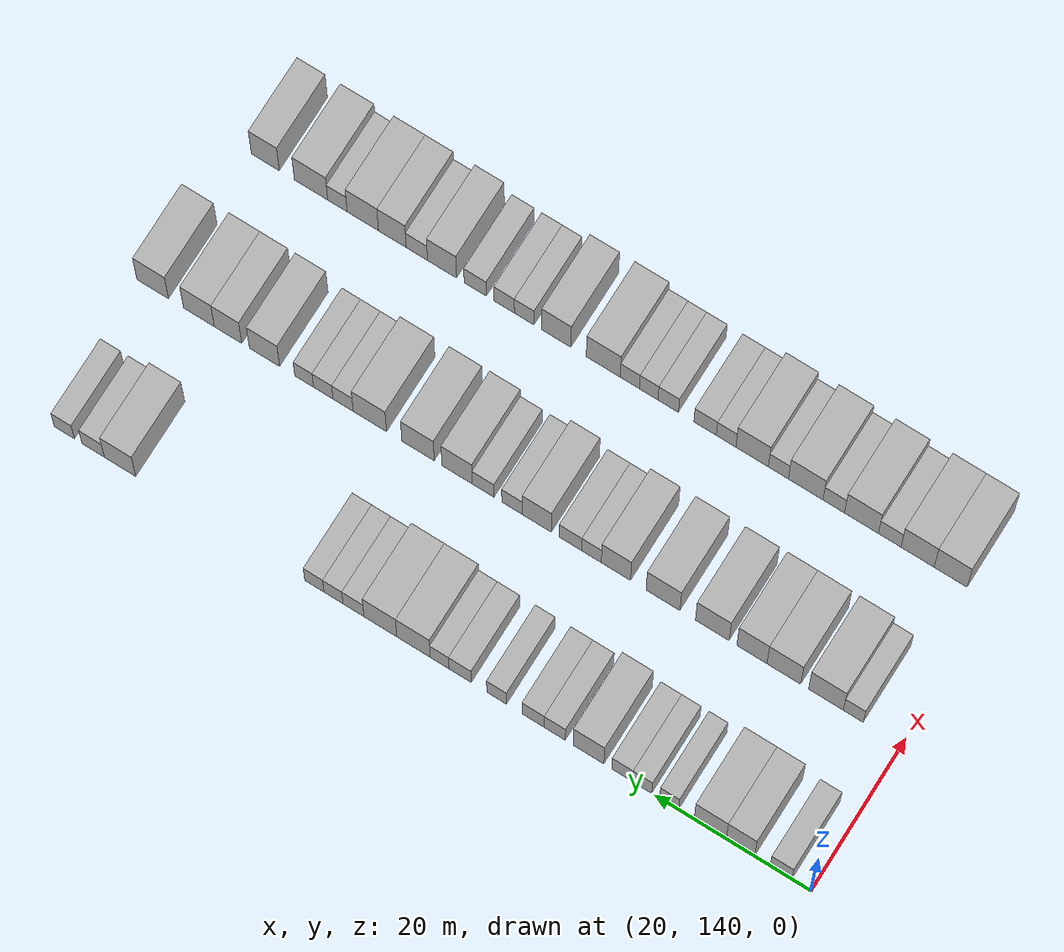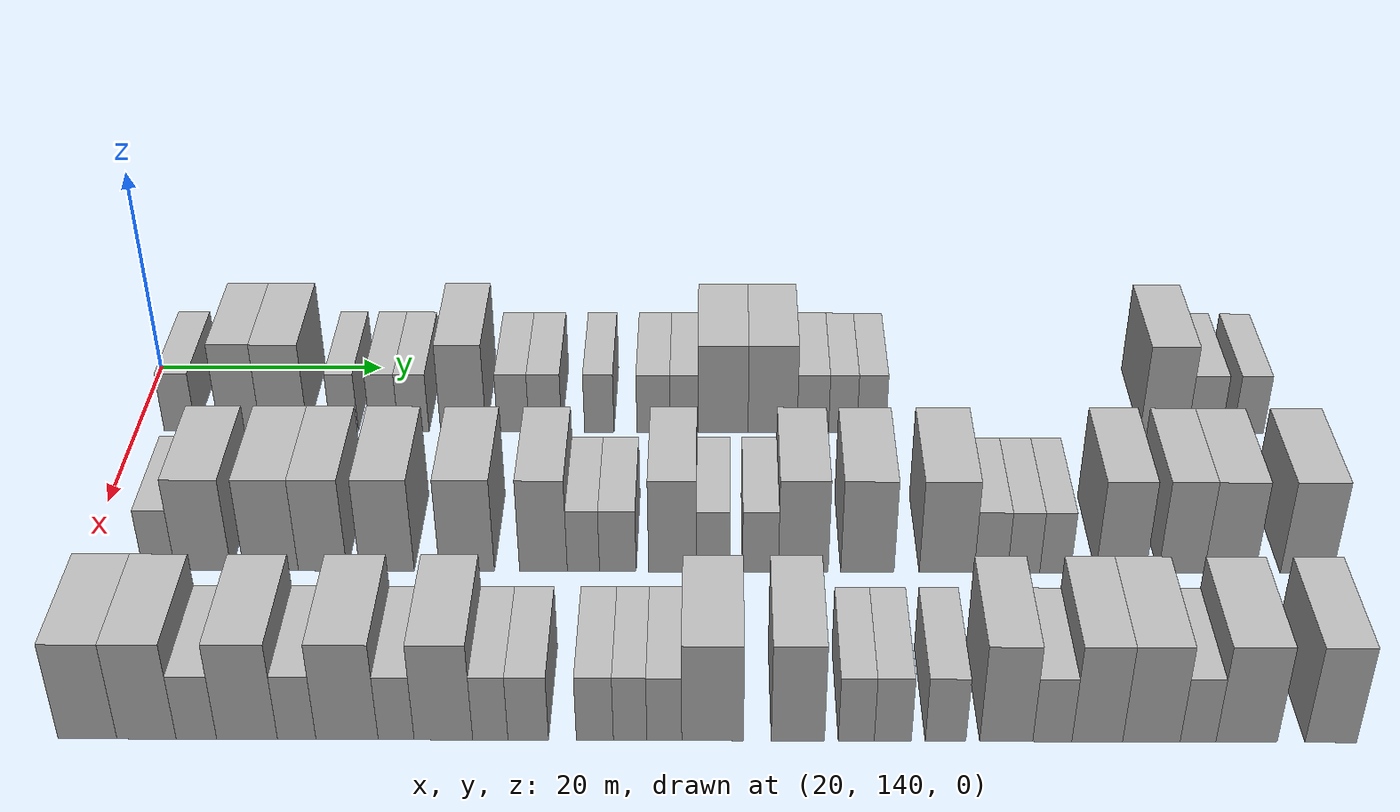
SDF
<sdf version="1.6">
 <world name="default">
  <model name="building_84">
   <static>1</static>
   <pose>25.0000 143.8363 0 0.000000 0.000000 0.000000</pose>
   <link name="link">
    <pose>0 0 3.00 0 0 0</pose>
    <collision name="collision"><geometry><box><size>10.0000 2.7764 6.0000</size></box></geometry></collision>
    <visual name="visual">
     <cast_shadows>0</cast_shadows>
     <geometry><box><size>10.0000 2.7764 6.0000</size></box></geometry>
     <material>
      <script>
       <uri>model://HANNAS_wall/materials/scripts</uri>
       <uri>model://HANNAS_wall/materials/textures</uri>
       <name>vrc/HANNAS_wall</name>
      </script>
     </material>
    </visual>
   </link>
  </model>
  <model name="building_85">
   <static>1</static>
   <pose>25.0000 149.0315 0 0.000000 0.000000 0.000000</pose>
   <link name="link">
    <pose>0 0 4.50 0 0 0</pose>
    <collision name="collision"><geometry><box><size>10.0000 3.6139 9.0000</size></box></geometry></collision>
    <visual name="visual">
     <cast_shadows>0</cast_shadows>
     <geometry><box><size>10.0000 3.6139 9.0000</size></box></geometry>
     <material>
      <script>
       <uri>model://HANNAS_wall/materials/scripts</uri>
       <uri>model://HANNAS_wall/materials/textures</uri>
       <name>vrc/HANNAS_wall</name>
      </script>
     </material>
    </visual>
   </link>
  </model>
  <model name="building_86">
   <static>1</static>
   <pose>25.0000 152.9008 0 0.000000 0.000000 0.000000</pose>
   <link name="link">
    <pose>0 0 4.50 0 0 0</pose>
    <collision name="collision"><geometry><box><size>10.0000 4.1248 9.0000</size></box></geometry></collision>
    <visual name="visual">
     <cast_shadows>0</cast_shadows>
     <geometry><box><size>10.0000 4.1248 9.0000</size></box></geometry>
     <material>
      <script>
       <uri>model://HANNAS_wall/materials/scripts</uri>
       <uri>model://HANNAS_wall/materials/textures</uri>
       <name>vrc/HANNAS_wall</name>
      </script>
     </material>
    </visual>
   </link>
  </model>
  <model name="building_87">
   <static>1</static>
   <pose>25.0000 158.1761 0 0.000000 0.000000 0.000000</pose>
   <link name="link">
    <pose>0 0 3.00 0 0 0</pose>
    <collision name="collision"><geometry><box><size>10.0000 2.4257 6.0000</size></box></geometry></collision>
    <visual name="visual">
     <cast_shadows>0</cast_shadows>
     <geometry><box><size>10.0000 2.4257 6.0000</size></box></geometry>
     <material>
      <script>
       <uri>model://HANNAS_wall/materials/scripts</uri>
       <uri>model://HANNAS_wall/materials/textures</uri>
       <name>vrc/HANNAS_wall</name>
      </script>
     </material>
    </visual>
   </link>
  </model>
  <model name="building_88">
   <static>1</static>
   <pose>25.0000 161.6281 0 0.000000 0.000000 0.000000</pose>
   <link name="link">
    <pose>0 0 3.00 0 0 0</pose>
    <collision name="collision"><geometry><box><size>10.0000 2.4784 6.0000</size></box></geometry></collision>
    <visual name="visual">
     <cast_shadows>0</cast_shadows>
     <geometry><box><size>10.0000 2.4784 6.0000</size></box></geometry>
     <material>
      <script>
       <uri>model://HANNAS_wall/materials/scripts</uri>
       <uri>model://HANNAS_wall/materials/textures</uri>
       <name>vrc/HANNAS_wall</name>
      </script>
     </material>
    </visual>
   </link>
  </model>
  <model name="building_89">
   <static>1</static>
   <pose>25.0000 164.2073 0 0.000000 0.000000 0.000000</pose>
   <link name="link">
    <pose>0 0 3.00 0 0 0</pose>
    <collision name="collision"><geometry><box><size>10.0000 2.6800 6.0000</size></box></geometry></collision>
    <visual name="visual">
     <cast_shadows>0</cast_shadows>
     <geometry><box><size>10.0000 2.6800 6.0000</size></box></geometry>
     <material>
      <script>
       <uri>model://HANNAS_wall/materials/scripts</uri>
       <uri>model://HANNAS_wall/materials/textures</uri>
       <name>vrc/HANNAS_wall</name>
      </script>
     </material>
    </visual>
   </link>
  </model>
  <model name="building_90">
   <static>1</static>
   <pose>25.0000 168.5317 0 0.000000 0.000000 0.000000</pose>
   <link name="link">
    <pose>0 0 4.50 0 0 0</pose>
    <collision name="collision"><geometry><box><size>10.0000 3.9687 9.0000</size></box></geometry></collision>
    <visual name="visual">
     <cast_shadows>0</cast_shadows>
     <geometry><box><size>10.0000 3.9687 9.0000</size></box></geometry>
     <material>
      <script>
       <uri>model://HANNAS_wall/materials/scripts</uri>
       <uri>model://HANNAS_wall/materials/textures</uri>
       <name>vrc/HANNAS_wall</name>
      </script>
     </material>
    </visual>
   </link>
  </model>
  <model name="building_91">
   <static>1</static>
   <pose>25.0000 172.8849 0 0.000000 0.000000 0.000000</pose>
   <link name="link">
    <pose>0 0 3.00 0 0 0</pose>
    <collision name="collision"><geometry><box><size>10.0000 2.7377 6.0000</size></box></geometry></collision>
    <visual name="visual">
     <cast_shadows>0</cast_shadows>
     <geometry><box><size>10.0000 2.7377 6.0000</size></box></geometry>
     <material>
      <script>
       <uri>model://HANNAS_wall/materials/scripts</uri>
       <uri>model://HANNAS_wall/materials/textures</uri>
       <name>vrc/HANNAS_wall</name>
      </script>
     </material>
    </visual>
   </link>
  </model>
  <model name="building_92">
   <static>1</static>
   <pose>25.0000 175.6750 0 0.000000 0.000000 0.000000</pose>
   <link name="link">
    <pose>0 0 3.00 0 0 0</pose>
    <collision name="collision"><geometry><box><size>10.0000 2.8425 6.0000</size></box></geometry></collision>
    <visual name="visual">
     <cast_shadows>0</cast_shadows>
     <geometry><box><size>10.0000 2.8425 6.0000</size></box></geometry>
     <material>
      <script>
       <uri>model://HANNAS_wall/materials/scripts</uri>
       <uri>model://HANNAS_wall/materials/textures</uri>
       <name>vrc/HANNAS_wall</name>
      </script>
     </material>
    </visual>
   </link>
  </model>
  <model name="building_93">
   <static>1</static>
   <pose>25.0000 180.3765 0 0.000000 0.000000 0.000000</pose>
   <link name="link">
    <pose>0 0 3.00 0 0 0</pose>
    <collision name="collision"><geometry><box><size>10.0000 2.5605 6.0000</size></box></geometry></collision>
    <visual name="visual">
     <cast_shadows>0</cast_shadows>
     <geometry><box><size>10.0000 2.5605 6.0000</size></box></geometry>
     <material>
      <script>
       <uri>model://HANNAS_wall/materials/scripts</uri>
       <uri>model://HANNAS_wall/materials/textures</uri>
       <name>vrc/HANNAS_wall</name>
      </script>
     </material>
    </visual>
   </link>
  </model>
  <model name="building_94">
   <static>1</static>
   <pose>25.0000 185.1068 0 0.000000 0.000000 0.000000</pose>
   <link name="link">
    <pose>0 0 3.00 0 0 0</pose>
    <collision name="collision"><geometry><box><size>10.0000 2.9002 6.0000</size></box></geometry></collision>
    <visual name="visual">
     <cast_shadows>0</cast_shadows>
     <geometry><box><size>10.0000 2.9002 6.0000</size></box></geometry>
     <material>
      <script>
       <uri>model://HANNAS_wall/materials/scripts</uri>
       <uri>model://HANNAS_wall/materials/textures</uri>
       <name>vrc/HANNAS_wall</name>
      </script>
     </material>
    </visual>
   </link>
  </model>
  <model name="building_95">
   <static>1</static>
   <pose>25.0000 187.7623 0 0.000000 0.000000 0.000000</pose>
   <link name="link">
    <pose>0 0 3.00 0 0 0</pose>
    <collision name="collision"><geometry><box><size>10.0000 2.4107 6.0000</size></box></geometry></collision>
    <visual name="visual">
     <cast_shadows>0</cast_shadows>
     <geometry><box><size>10.0000 2.4107 6.0000</size></box></geometry>
     <material>
      <script>
       <uri>model://HANNAS_wall/materials/scripts</uri>
       <uri>model://HANNAS_wall/materials/textures</uri>
       <name>vrc/HANNAS_wall</name>
      </script>
     </material>
    </visual>
   </link>
  </model>
  <model name="building_96">
   <static>1</static>
   <pose>25.0000 191.1406 0 0.000000 0.000000 0.000000</pose>
   <link name="link">
    <pose>0 0 4.50 0 0 0</pose>
    <collision name="collision"><geometry><box><size>10.0000 4.3459 9.0000</size></box></geometry></collision>
    <visual name="visual">
     <cast_shadows>0</cast_shadows>
     <geometry><box><size>10.0000 4.3459 9.0000</size></box></geometry>
     <material>
      <script>
       <uri>model://HANNAS_wall/materials/scripts</uri>
       <uri>model://HANNAS_wall/materials/textures</uri>
       <name>vrc/HANNAS_wall</name>
      </script>
     </material>
    </visual>
   </link>
  </model>
  <model name="building_97">
   <static>1</static>
   <pose>25.0000 195.4505 0 0.000000 0.000000 0.000000</pose>
   <link name="link">
    <pose>0 0 4.50 0 0 0</pose>
    <collision name="collision"><geometry><box><size>10.0000 4.2740 9.0000</size></box></geometry></collision>
    <visual name="visual">
     <cast_shadows>0</cast_shadows>
     <geometry><box><size>10.0000 4.2740 9.0000</size></box></geometry>
     <material>
      <script>
       <uri>model://HANNAS_wall/materials/scripts</uri>
       <uri>model://HANNAS_wall/materials/textures</uri>
       <name>vrc/HANNAS_wall</name>
      </script>
     </material>
    </visual>
   </link>
  </model>
  <model name="building_98">
   <static>1</static>
   <pose>25.0000 198.9524 0 0.000000 0.000000 0.000000</pose>
   <link name="link">
    <pose>0 0 3.00 0 0 0</pose>
    <collision name="collision"><geometry><box><size>10.0000 2.7296 6.0000</size></box></geometry></collision>
    <visual name="visual">
     <cast_shadows>0</cast_shadows>
     <geometry><box><size>10.0000 2.7296 6.0000</size></box></geometry>
     <material>
      <script>
       <uri>model://HANNAS_wall/materials/scripts</uri>
       <uri>model://HANNAS_wall/materials/textures</uri>
       <name>vrc/HANNAS_wall</name>
      </script>
     </material>
    </visual>
   </link>
  </model>
  <model name="building_99">
   <static>1</static>
   <pose>25.0000 201.5510 0 0.000000 0.000000 0.000000</pose>
   <link name="link">
    <pose>0 0 3.00 0 0 0</pose>
    <collision name="collision"><geometry><box><size>10.0000 2.4676 6.0000</size></box></geometry></collision>
    <visual name="visual">
     <cast_shadows>0</cast_shadows>
     <geometry><box><size>10.0000 2.4676 6.0000</size></box></geometry>
     <material>
      <script>
       <uri>model://HANNAS_wall/materials/scripts</uri>
       <uri>model://HANNAS_wall/materials/textures</uri>
       <name>vrc/HANNAS_wall</name>
      </script>
     </material>
    </visual>
   </link>
  </model>
  <model name="building_100">
   <static>1</static>
   <pose>25.0000 204.0398 0 0.000000 0.000000 0.000000</pose>
   <link name="link">
    <pose>0 0 3.00 0 0 0</pose>
    <collision name="collision"><geometry><box><size>10.0000 2.5100 6.0000</size></box></geometry></collision>
    <visual name="visual">
     <cast_shadows>0</cast_shadows>
     <geometry><box><size>10.0000 2.5100 6.0000</size></box></geometry>
     <material>
      <script>
       <uri>model://HANNAS_wall/materials/scripts</uri>
       <uri>model://HANNAS_wall/materials/textures</uri>
       <name>vrc/HANNAS_wall</name>
      </script>
     </material>
    </visual>
   </link>
  </model>
  <model name="building_101">
   <static>1</static>
   <pose>25.0000 229.4851 0 0.000000 0.000000 0.000000</pose>
   <link name="link">
    <pose>0 0 4.50 0 0 0</pose>
    <collision name="collision"><geometry><box><size>10.0000 4.1268 9.0000</size></box></geometry></collision>
    <visual name="visual">
     <cast_shadows>0</cast_shadows>
     <geometry><box><size>10.0000 4.1268 9.0000</size></box></geometry>
     <material>
      <script>
       <uri>model://HANNAS_wall/materials/scripts</uri>
       <uri>model://HANNAS_wall/materials/textures</uri>
       <name>vrc/HANNAS_wall</name>
      </script>
     </material>
    </visual>
   </link>
  </model>
  <model name="building_102">
   <static>1</static>
   <pose>25.0000 233.0192 0 0.000000 0.000000 0.000000</pose>
   <link name="link">
    <pose>0 0 3.00 0 0 0</pose>
    <collision name="collision"><geometry><box><size>10.0000 2.9414 6.0000</size></box></geometry></collision>
    <visual name="visual">
     <cast_shadows>0</cast_shadows>
     <geometry><box><size>10.0000 2.9414 6.0000</size></box></geometry>
     <material>
      <script>
       <uri>model://HANNAS_wall/materials/scripts</uri>
       <uri>model://HANNAS_wall/materials/textures</uri>
       <name>vrc/HANNAS_wall</name>
      </script>
     </material>
    </visual>
   </link>
  </model>
  <model name="building_103">
   <static>1</static>
   <pose>25.0000 236.8110 0 0.000000 0.000000 0.000000</pose>
   <link name="link">
    <pose>0 0 3.00 0 0 0</pose>
    <collision name="collision"><geometry><box><size>10.0000 2.6422 6.0000</size></box></geometry></collision>
    <visual name="visual">
     <cast_shadows>0</cast_shadows>
     <geometry><box><size>10.0000 2.6422 6.0000</size></box></geometry>
     <material>
      <script>
       <uri>model://HANNAS_wall/materials/scripts</uri>
       <uri>model://HANNAS_wall/materials/textures</uri>
       <name>vrc/HANNAS_wall</name>
      </script>
     </material>
    </visual>
   </link>
  </model>
  <model name="building_188">
   <static>1</static>
   <pose>44.0000 146.2214 0 0.000000 0.000000 0.000000</pose>
   <link name="link">
    <pose>0 0 3.00 0 0 0</pose>
    <collision name="collision"><geometry><box><size>10.0000 2.5576 6.0000</size></box></geometry></collision>
    <visual name="visual">
     <cast_shadows>0</cast_shadows>
     <geometry><box><size>10.0000 2.5576 6.0000</size></box></geometry>
     <material>
      <script>
       <uri>model://HANNAS_wall/materials/scripts</uri>
       <uri>model://HANNAS_wall/materials/textures</uri>
       <name>vrc/HANNAS_wall</name>
      </script>
     </material>
    </visual>
   </link>
  </model>
  <model name="building_189">
   <static>1</static>
   <pose>44.0000 149.7352 0 0.000000 0.000000 0.000000</pose>
   <link name="link">
    <pose>0 0 4.50 0 0 0</pose>
    <collision name="collision"><geometry><box><size>10.0000 4.4700 9.0000</size></box></geometry></collision>
    <visual name="visual">
     <cast_shadows>0</cast_shadows>
     <geometry><box><size>10.0000 4.4700 9.0000</size></box></geometry>
     <material>
      <script>
       <uri>model://HANNAS_wall/materials/scripts</uri>
       <uri>model://HANNAS_wall/materials/textures</uri>
       <name>vrc/HANNAS_wall</name>
      </script>
     </material>
    </visual>
   </link>
  </model>
  <model name="building_190">
   <static>1</static>
   <pose>44.0000 155.1415 0 0.000000 0.000000 0.000000</pose>
   <link name="link">
    <pose>0 0 4.50 0 0 0</pose>
    <collision name="collision"><geometry><box><size>10.0000 4.3425 9.0000</size></box></geometry></collision>
    <visual name="visual">
     <cast_shadows>0</cast_shadows>
     <geometry><box><size>10.0000 4.3425 9.0000</size></box></geometry>
     <material>
      <script>
       <uri>model://HANNAS_wall/materials/scripts</uri>
       <uri>model://HANNAS_wall/materials/textures</uri>
       <name>vrc/HANNAS_wall</name>
      </script>
     </material>
    </visual>
   </link>
  </model>
  <model name="building_191">
   <static>1</static>
   <pose>44.0000 159.2518 0 0.000000 0.000000 0.000000</pose>
   <link name="link">
    <pose>0 0 4.50 0 0 0</pose>
    <collision name="collision"><geometry><box><size>10.0000 3.8781 9.0000</size></box></geometry></collision>
    <visual name="visual">
     <cast_shadows>0</cast_shadows>
     <geometry><box><size>10.0000 3.8781 9.0000</size></box></geometry>
     <material>
      <script>
       <uri>model://HANNAS_wall/materials/scripts</uri>
       <uri>model://HANNAS_wall/materials/textures</uri>
       <name>vrc/HANNAS_wall</name>
      </script>
     </material>
    </visual>
   </link>
  </model>
  <model name="building_192">
   <static>1</static>
   <pose>44.0000 164.3646 0 0.000000 0.000000 0.000000</pose>
   <link name="link">
    <pose>0 0 4.50 0 0 0</pose>
    <collision name="collision"><geometry><box><size>10.0000 4.3475 9.0000</size></box></geometry></collision>
    <visual name="visual">
     <cast_shadows>0</cast_shadows>
     <geometry><box><size>10.0000 4.3475 9.0000</size></box></geometry>
     <material>
      <script>
       <uri>model://HANNAS_wall/materials/scripts</uri>
       <uri>model://HANNAS_wall/materials/textures</uri>
       <name>vrc/HANNAS_wall</name>
      </script>
     </material>
    </visual>
   </link>
  </model>
  <model name="building_193">
   <static>1</static>
   <pose>44.0000 170.7297 0 0.000000 0.000000 0.000000</pose>
   <link name="link">
    <pose>0 0 4.50 0 0 0</pose>
    <collision name="collision"><geometry><box><size>10.0000 4.3827 9.0000</size></box></geometry></collision>
    <visual name="visual">
     <cast_shadows>0</cast_shadows>
     <geometry><box><size>10.0000 4.3827 9.0000</size></box></geometry>
     <material>
      <script>
       <uri>model://HANNAS_wall/materials/scripts</uri>
       <uri>model://HANNAS_wall/materials/textures</uri>
       <name>vrc/HANNAS_wall</name>
      </script>
     </material>
    </visual>
   </link>
  </model>
  <model name="building_194">
   <static>1</static>
   <pose>44.0000 176.8200 0 0.000000 0.000000 0.000000</pose>
   <link name="link">
    <pose>0 0 4.50 0 0 0</pose>
    <collision name="collision"><geometry><box><size>10.0000 3.7977 9.0000</size></box></geometry></collision>
    <visual name="visual">
     <cast_shadows>0</cast_shadows>
     <geometry><box><size>10.0000 3.7977 9.0000</size></box></geometry>
     <material>
      <script>
       <uri>model://HANNAS_wall/materials/scripts</uri>
       <uri>model://HANNAS_wall/materials/textures</uri>
       <name>vrc/HANNAS_wall</name>
      </script>
     </material>
    </visual>
   </link>
  </model>
  <model name="building_195">
   <static>1</static>
   <pose>44.0000 179.9994 0 0.000000 0.000000 0.000000</pose>
   <link name="link">
    <pose>0 0 3.00 0 0 0</pose>
    <collision name="collision"><geometry><box><size>10.0000 2.5611 6.0000</size></box></geometry></collision>
    <visual name="visual">
     <cast_shadows>0</cast_shadows>
     <geometry><box><size>10.0000 2.5611 6.0000</size></box></geometry>
     <material>
      <script>
       <uri>model://HANNAS_wall/materials/scripts</uri>
       <uri>model://HANNAS_wall/materials/textures</uri>
       <name>vrc/HANNAS_wall</name>
      </script>
     </material>
    </visual>
   </link>
  </model>
  <model name="building_196">
   <static>1</static>
   <pose>44.0000 182.7371 0 0.000000 0.000000 0.000000</pose>
   <link name="link">
    <pose>0 0 3.00 0 0 0</pose>
    <collision name="collision"><geometry><box><size>10.0000 2.9144 6.0000</size></box></geometry></collision>
    <visual name="visual">
     <cast_shadows>0</cast_shadows>
     <geometry><box><size>10.0000 2.9144 6.0000</size></box></geometry>
     <material>
      <script>
       <uri>model://HANNAS_wall/materials/scripts</uri>
       <uri>model://HANNAS_wall/materials/textures</uri>
       <name>vrc/HANNAS_wall</name>
      </script>
     </material>
    </visual>
   </link>
  </model>
  <model name="building_197">
   <static>1</static>
   <pose>44.0000 187.0875 0 0.000000 0.000000 0.000000</pose>
   <link name="link">
    <pose>0 0 4.50 0 0 0</pose>
    <collision name="collision"><geometry><box><size>10.0000 3.7864 9.0000</size></box></geometry></collision>
    <visual name="visual">
     <cast_shadows>0</cast_shadows>
     <geometry><box><size>10.0000 3.7864 9.0000</size></box></geometry>
     <material>
      <script>
       <uri>model://HANNAS_wall/materials/scripts</uri>
       <uri>model://HANNAS_wall/materials/textures</uri>
       <name>vrc/HANNAS_wall</name>
      </script>
     </material>
    </visual>
   </link>
  </model>
  <model name="building_198">
   <static>1</static>
   <pose>44.0000 190.3114 0 0.000000 0.000000 0.000000</pose>
   <link name="link">
    <pose>0 0 3.00 0 0 0</pose>
    <collision name="collision"><geometry><box><size>10.0000 2.6614 6.0000</size></box></geometry></collision>
    <visual name="visual">
     <cast_shadows>0</cast_shadows>
     <geometry><box><size>10.0000 2.6614 6.0000</size></box></geometry>
     <material>
      <script>
       <uri>model://HANNAS_wall/materials/scripts</uri>
       <uri>model://HANNAS_wall/materials/textures</uri>
       <name>vrc/HANNAS_wall</name>
      </script>
     </material>
    </visual>
   </link>
  </model>
  <model name="building_199">
   <static>1</static>
   <pose>44.0000 194.0648 0 0.000000 0.000000 0.000000</pose>
   <link name="link">
    <pose>0 0 3.00 0 0 0</pose>
    <collision name="collision"><geometry><box><size>10.0000 2.8452 6.0000</size></box></geometry></collision>
    <visual name="visual">
     <cast_shadows>0</cast_shadows>
     <geometry><box><size>10.0000 2.8452 6.0000</size></box></geometry>
     <material>
      <script>
       <uri>model://HANNAS_wall/materials/scripts</uri>
       <uri>model://HANNAS_wall/materials/textures</uri>
       <name>vrc/HANNAS_wall</name>
      </script>
     </material>
    </visual>
   </link>
  </model>
  <model name="building_200">
   <static>1</static>
   <pose>44.0000 197.4690 0 0.000000 0.000000 0.000000</pose>
   <link name="link">
    <pose>0 0 4.50 0 0 0</pose>
    <collision name="collision"><geometry><box><size>10.0000 3.9632 9.0000</size></box></geometry></collision>
    <visual name="visual">
     <cast_shadows>0</cast_shadows>
     <geometry><box><size>10.0000 3.9632 9.0000</size></box></geometry>
     <material>
      <script>
       <uri>model://HANNAS_wall/materials/scripts</uri>
       <uri>model://HANNAS_wall/materials/textures</uri>
       <name>vrc/HANNAS_wall</name>
      </script>
     </material>
    </visual>
   </link>
  </model>
  <model name="building_201">
   <static>1</static>
   <pose>44.0000 202.5682 0 0.000000 0.000000 0.000000</pose>
   <link name="link">
    <pose>0 0 4.50 0 0 0</pose>
    <collision name="collision"><geometry><box><size>10.0000 4.2353 9.0000</size></box></geometry></collision>
    <visual name="visual">
     <cast_shadows>0</cast_shadows>
     <geometry><box><size>10.0000 4.2353 9.0000</size></box></geometry>
     <material>
      <script>
       <uri>model://HANNAS_wall/materials/scripts</uri>
       <uri>model://HANNAS_wall/materials/textures</uri>
       <name>vrc/HANNAS_wall</name>
      </script>
     </material>
    </visual>
   </link>
  </model>
  <model name="building_202">
   <static>1</static>
   <pose>44.0000 208.8711 0 0.000000 0.000000 0.000000</pose>
   <link name="link">
    <pose>0 0 4.50 0 0 0</pose>
    <collision name="collision"><geometry><box><size>10.0000 4.3705 9.0000</size></box></geometry></collision>
    <visual name="visual">
     <cast_shadows>0</cast_shadows>
     <geometry><box><size>10.0000 4.3705 9.0000</size></box></geometry>
     <material>
      <script>
       <uri>model://HANNAS_wall/materials/scripts</uri>
       <uri>model://HANNAS_wall/materials/textures</uri>
       <name>vrc/HANNAS_wall</name>
      </script>
     </material>
    </visual>
   </link>
  </model>
  <model name="building_203">
   <static>1</static>
   <pose>44.0000 212.3809 0 0.000000 0.000000 0.000000</pose>
   <link name="link">
    <pose>0 0 3.00 0 0 0</pose>
    <collision name="collision"><geometry><box><size>10.0000 2.6491 6.0000</size></box></geometry></collision>
    <visual name="visual">
     <cast_shadows>0</cast_shadows>
     <geometry><box><size>10.0000 2.6491 6.0000</size></box></geometry>
     <material>
      <script>
       <uri>model://HANNAS_wall/materials/scripts</uri>
       <uri>model://HANNAS_wall/materials/textures</uri>
       <name>vrc/HANNAS_wall</name>
      </script>
     </material>
    </visual>
   </link>
  </model>
  <model name="building_204">
   <static>1</static>
   <pose>44.0000 214.9820 0 0.000000 0.000000 0.000000</pose>
   <link name="link">
    <pose>0 0 3.00 0 0 0</pose>
    <collision name="collision"><geometry><box><size>10.0000 2.5532 6.0000</size></box></geometry></collision>
    <visual name="visual">
     <cast_shadows>0</cast_shadows>
     <geometry><box><size>10.0000 2.5532 6.0000</size></box></geometry>
     <material>
      <script>
       <uri>model://HANNAS_wall/materials/scripts</uri>
       <uri>model://HANNAS_wall/materials/textures</uri>
       <name>vrc/HANNAS_wall</name>
      </script>
     </material>
    </visual>
   </link>
  </model>
  <model name="building_205">
   <static>1</static>
   <pose>44.0000 217.4858 0 0.000000 0.000000 0.000000</pose>
   <link name="link">
    <pose>0 0 3.00 0 0 0</pose>
    <collision name="collision"><geometry><box><size>10.0000 2.4544 6.0000</size></box></geometry></collision>
    <visual name="visual">
     <cast_shadows>0</cast_shadows>
     <geometry><box><size>10.0000 2.4544 6.0000</size></box></geometry>
     <material>
      <script>
       <uri>model://HANNAS_wall/materials/scripts</uri>
       <uri>model://HANNAS_wall/materials/textures</uri>
       <name>vrc/HANNAS_wall</name>
      </script>
     </material>
    </visual>
   </link>
  </model>
  <model name="building_206">
   <static>1</static>
   <pose>44.0000 222.6982 0 0.000000 0.000000 0.000000</pose>
   <link name="link">
    <pose>0 0 4.50 0 0 0</pose>
    <collision name="collision"><geometry><box><size>10.0000 3.9705 9.0000</size></box></geometry></collision>
    <visual name="visual">
     <cast_shadows>0</cast_shadows>
     <geometry><box><size>10.0000 3.9705 9.0000</size></box></geometry>
     <material>
      <script>
       <uri>model://HANNAS_wall/materials/scripts</uri>
       <uri>model://HANNAS_wall/materials/textures</uri>
       <name>vrc/HANNAS_wall</name>
      </script>
     </material>
    </visual>
   </link>
  </model>
  <model name="building_207">
   <static>1</static>
   <pose>44.0000 227.4969 0 0.000000 0.000000 0.000000</pose>
   <link name="link">
    <pose>0 0 4.50 0 0 0</pose>
    <collision name="collision"><geometry><box><size>10.0000 3.6268 9.0000</size></box></geometry></collision>
    <visual name="visual">
     <cast_shadows>0</cast_shadows>
     <geometry><box><size>10.0000 3.6268 9.0000</size></box></geometry>
     <material>
      <script>
       <uri>model://HANNAS_wall/materials/scripts</uri>
       <uri>model://HANNAS_wall/materials/textures</uri>
       <name>vrc/HANNAS_wall</name>
      </script>
     </material>
    </visual>
   </link>
  </model>
  <model name="building_208">
   <static>1</static>
   <pose>44.0000 231.3397 0 0.000000 0.000000 0.000000</pose>
   <link name="link">
    <pose>0 0 4.50 0 0 0</pose>
    <collision name="collision"><geometry><box><size>10.0000 4.0588 9.0000</size></box></geometry></collision>
    <visual name="visual">
     <cast_shadows>0</cast_shadows>
     <geometry><box><size>10.0000 4.0588 9.0000</size></box></geometry>
     <material>
      <script>
       <uri>model://HANNAS_wall/materials/scripts</uri>
       <uri>model://HANNAS_wall/materials/textures</uri>
       <name>vrc/HANNAS_wall</name>
      </script>
     </material>
    </visual>
   </link>
  </model>
  <model name="building_209">
   <static>1</static>
   <pose>44.0000 237.4515 0 0.000000 0.000000 0.000000</pose>
   <link name="link">
    <pose>0 0 4.50 0 0 0</pose>
    <collision name="collision"><geometry><box><size>10.0000 4.1649 9.0000</size></box></geometry></collision>
    <visual name="visual">
     <cast_shadows>0</cast_shadows>
     <geometry><box><size>10.0000 4.1649 9.0000</size></box></geometry>
     <material>
      <script>
       <uri>model://HANNAS_wall/materials/scripts</uri>
       <uri>model://HANNAS_wall/materials/textures</uri>
       <name>vrc/HANNAS_wall</name>
      </script>
     </material>
    </visual>
   </link>
  </model>
  <model name="building_310">
   <static>1</static>
   <pose>63.0000 145.2765 0 0.000000 0.000000 0.000000</pose>
   <link name="link">
    <pose>0 0 4.50 0 0 0</pose>
    <collision name="collision"><geometry><box><size>10.0000 4.2500 9.0000</size></box></geometry></collision>
    <visual name="visual">
     <cast_shadows>0</cast_shadows>
     <geometry><box><size>10.0000 4.2500 9.0000</size></box></geometry>
     <material>
      <script>
       <uri>model://HANNAS_wall/materials/scripts</uri>
       <uri>model://HANNAS_wall/materials/textures</uri>
       <name>vrc/HANNAS_wall</name>
      </script>
     </material>
    </visual>
   </link>
  </model>
  <model name="building_311">
   <static>1</static>
   <pose>63.0000 149.5358 0 0.000000 0.000000 0.000000</pose>
   <link name="link">
    <pose>0 0 4.50 0 0 0</pose>
    <collision name="collision"><geometry><box><size>10.0000 4.2686 9.0000</size></box></geometry></collision>
    <visual name="visual">
     <cast_shadows>0</cast_shadows>
     <geometry><box><size>10.0000 4.2686 9.0000</size></box></geometry>
     <material>
      <script>
       <uri>model://HANNAS_wall/materials/scripts</uri>
       <uri>model://HANNAS_wall/materials/textures</uri>
       <name>vrc/HANNAS_wall</name>
      </script>
     </material>
    </visual>
   </link>
  </model>
  <model name="building_312">
   <static>1</static>
   <pose>63.0000 153.1303 0 0.000000 0.000000 0.000000</pose>
   <link name="link">
    <pose>0 0 3.00 0 0 0</pose>
    <collision name="collision"><geometry><box><size>10.0000 2.9205 6.0000</size></box></geometry></collision>
    <visual name="visual">
     <cast_shadows>0</cast_shadows>
     <geometry><box><size>10.0000 2.9205 6.0000</size></box></geometry>
     <material>
      <script>
       <uri>model://HANNAS_wall/materials/scripts</uri>
       <uri>model://HANNAS_wall/materials/textures</uri>
       <name>vrc/HANNAS_wall</name>
      </script>
     </material>
    </visual>
   </link>
  </model>
  <model name="building_313">
   <static>1</static>
   <pose>63.0000 156.7827 0 0.000000 0.000000 0.000000</pose>
   <link name="link">
    <pose>0 0 4.50 0 0 0</pose>
    <collision name="collision"><geometry><box><size>10.0000 4.3843 9.0000</size></box></geometry></collision>
    <visual name="visual">
     <cast_shadows>0</cast_shadows>
     <geometry><box><size>10.0000 4.3843 9.0000</size></box></geometry>
     <material>
      <script>
       <uri>model://HANNAS_wall/materials/scripts</uri>
       <uri>model://HANNAS_wall/materials/textures</uri>
       <name>vrc/HANNAS_wall</name>
      </script>
     </material>
    </visual>
   </link>
  </model>
  <model name="building_314">
   <static>1</static>
   <pose>63.0000 160.3577 0 0.000000 0.000000 0.000000</pose>
   <link name="link">
    <pose>0 0 3.00 0 0 0</pose>
    <collision name="collision"><geometry><box><size>10.0000 2.7657 6.0000</size></box></geometry></collision>
    <visual name="visual">
     <cast_shadows>0</cast_shadows>
     <geometry><box><size>10.0000 2.7657 6.0000</size></box></geometry>
     <material>
      <script>
       <uri>model://HANNAS_wall/materials/scripts</uri>
       <uri>model://HANNAS_wall/materials/textures</uri>
       <name>vrc/HANNAS_wall</name>
      </script>
     </material>
    </visual>
   </link>
  </model>
  <model name="building_315">
   <static>1</static>
   <pose>63.0000 163.9850 0 0.000000 0.000000 0.000000</pose>
   <link name="link">
    <pose>0 0 4.50 0 0 0</pose>
    <collision name="collision"><geometry><box><size>10.0000 4.4889 9.0000</size></box></geometry></collision>
    <visual name="visual">
     <cast_shadows>0</cast_shadows>
     <geometry><box><size>10.0000 4.4889 9.0000</size></box></geometry>
     <material>
      <script>
       <uri>model://HANNAS_wall/materials/scripts</uri>
       <uri>model://HANNAS_wall/materials/textures</uri>
       <name>vrc/HANNAS_wall</name>
      </script>
     </material>
    </visual>
   </link>
  </model>
  <model name="building_316">
   <static>1</static>
   <pose>63.0000 167.5235 0 0.000000 0.000000 0.000000</pose>
   <link name="link">
    <pose>0 0 3.00 0 0 0</pose>
    <collision name="collision"><geometry><box><size>10.0000 2.5881 6.0000</size></box></geometry></collision>
    <visual name="visual">
     <cast_shadows>0</cast_shadows>
     <geometry><box><size>10.0000 2.5881 6.0000</size></box></geometry>
     <material>
      <script>
       <uri>model://HANNAS_wall/materials/scripts</uri>
       <uri>model://HANNAS_wall/materials/textures</uri>
       <name>vrc/HANNAS_wall</name>
      </script>
     </material>
    </visual>
   </link>
  </model>
  <model name="building_317">
   <static>1</static>
   <pose>63.0000 170.9270 0 0.000000 0.000000 0.000000</pose>
   <link name="link">
    <pose>0 0 4.50 0 0 0</pose>
    <collision name="collision"><geometry><box><size>10.0000 4.2188 9.0000</size></box></geometry></collision>
    <visual name="visual">
     <cast_shadows>0</cast_shadows>
     <geometry><box><size>10.0000 4.2188 9.0000</size></box></geometry>
     <material>
      <script>
       <uri>model://HANNAS_wall/materials/scripts</uri>
       <uri>model://HANNAS_wall/materials/textures</uri>
       <name>vrc/HANNAS_wall</name>
      </script>
     </material>
    </visual>
   </link>
  </model>
  <model name="building_318">
   <static>1</static>
   <pose>63.0000 174.3055 0 0.000000 0.000000 0.000000</pose>
   <link name="link">
    <pose>0 0 3.00 0 0 0</pose>
    <collision name="collision"><geometry><box><size>10.0000 2.5383 6.0000</size></box></geometry></collision>
    <visual name="visual">
     <cast_shadows>0</cast_shadows>
     <geometry><box><size>10.0000 2.5383 6.0000</size></box></geometry>
     <material>
      <script>
       <uri>model://HANNAS_wall/materials/scripts</uri>
       <uri>model://HANNAS_wall/materials/textures</uri>
       <name>vrc/HANNAS_wall</name>
      </script>
     </material>
    </visual>
   </link>
  </model>
  <model name="building_319">
   <static>1</static>
   <pose>63.0000 177.0371 0 0.000000 0.000000 0.000000</pose>
   <link name="link">
    <pose>0 0 3.00 0 0 0</pose>
    <collision name="collision"><geometry><box><size>10.0000 2.9248 6.0000</size></box></geometry></collision>
    <visual name="visual">
     <cast_shadows>0</cast_shadows>
     <geometry><box><size>10.0000 2.9248 6.0000</size></box></geometry>
     <material>
      <script>
       <uri>model://HANNAS_wall/materials/scripts</uri>
       <uri>model://HANNAS_wall/materials/textures</uri>
       <name>vrc/HANNAS_wall</name>
      </script>
     </material>
    </visual>
   </link>
  </model>
  <model name="building_320">
   <static>1</static>
   <pose>63.0000 181.8319 0 0.000000 0.000000 0.000000</pose>
   <link name="link">
    <pose>0 0 3.00 0 0 0</pose>
    <collision name="collision"><geometry><box><size>10.0000 2.6649 6.0000</size></box></geometry></collision>
    <visual name="visual">
     <cast_shadows>0</cast_shadows>
     <geometry><box><size>10.0000 2.6649 6.0000</size></box></geometry>
     <material>
      <script>
       <uri>model://HANNAS_wall/materials/scripts</uri>
       <uri>model://HANNAS_wall/materials/textures</uri>
       <name>vrc/HANNAS_wall</name>
      </script>
     </material>
    </visual>
   </link>
  </model>
  <model name="building_321">
   <static>1</static>
   <pose>63.0000 184.3716 0 0.000000 0.000000 0.000000</pose>
   <link name="link">
    <pose>0 0 3.00 0 0 0</pose>
    <collision name="collision"><geometry><box><size>10.0000 2.4146 6.0000</size></box></geometry></collision>
    <visual name="visual">
     <cast_shadows>0</cast_shadows>
     <geometry><box><size>10.0000 2.4146 6.0000</size></box></geometry>
     <material>
      <script>
       <uri>model://HANNAS_wall/materials/scripts</uri>
       <uri>model://HANNAS_wall/materials/textures</uri>
       <name>vrc/HANNAS_wall</name>
      </script>
     </material>
    </visual>
   </link>
  </model>
  <model name="building_322">
   <static>1</static>
   <pose>63.0000 186.8325 0 0.000000 0.000000 0.000000</pose>
   <link name="link">
    <pose>0 0 3.00 0 0 0</pose>
    <collision name="collision"><geometry><box><size>10.0000 2.5072 6.0000</size></box></geometry></collision>
    <visual name="visual">
     <cast_shadows>0</cast_shadows>
     <geometry><box><size>10.0000 2.5072 6.0000</size></box></geometry>
     <material>
      <script>
       <uri>model://HANNAS_wall/materials/scripts</uri>
       <uri>model://HANNAS_wall/materials/textures</uri>
       <name>vrc/HANNAS_wall</name>
      </script>
     </material>
    </visual>
   </link>
  </model>
  <model name="building_323">
   <static>1</static>
   <pose>63.0000 190.3012 0 0.000000 0.000000 0.000000</pose>
   <link name="link">
    <pose>0 0 4.50 0 0 0</pose>
    <collision name="collision"><geometry><box><size>10.0000 4.4303 9.0000</size></box></geometry></collision>
    <visual name="visual">
     <cast_shadows>0</cast_shadows>
     <geometry><box><size>10.0000 4.4303 9.0000</size></box></geometry>
     <material>
      <script>
       <uri>model://HANNAS_wall/materials/scripts</uri>
       <uri>model://HANNAS_wall/materials/textures</uri>
       <name>vrc/HANNAS_wall</name>
      </script>
     </material>
    </visual>
   </link>
  </model>
  <model name="building_324">
   <static>1</static>
   <pose>63.0000 196.4320 0 0.000000 0.000000 0.000000</pose>
   <link name="link">
    <pose>0 0 4.50 0 0 0</pose>
    <collision name="collision"><geometry><box><size>10.0000 3.8312 9.0000</size></box></geometry></collision>
    <visual name="visual">
     <cast_shadows>0</cast_shadows>
     <geometry><box><size>10.0000 3.8312 9.0000</size></box></geometry>
     <material>
      <script>
       <uri>model://HANNAS_wall/materials/scripts</uri>
       <uri>model://HANNAS_wall/materials/textures</uri>
       <name>vrc/HANNAS_wall</name>
      </script>
     </material>
    </visual>
   </link>
  </model>
  <model name="building_325">
   <static>1</static>
   <pose>63.0000 200.6374 0 0.000000 0.000000 0.000000</pose>
   <link name="link">
    <pose>0 0 3.00 0 0 0</pose>
    <collision name="collision"><geometry><box><size>10.0000 2.5796 6.0000</size></box></geometry></collision>
    <visual name="visual">
     <cast_shadows>0</cast_shadows>
     <geometry><box><size>10.0000 2.5796 6.0000</size></box></geometry>
     <material>
      <script>
       <uri>model://HANNAS_wall/materials/scripts</uri>
       <uri>model://HANNAS_wall/materials/textures</uri>
       <name>vrc/HANNAS_wall</name>
      </script>
     </material>
    </visual>
   </link>
  </model>
  <model name="building_326">
   <static>1</static>
   <pose>63.0000 203.2612 0 0.000000 0.000000 0.000000</pose>
   <link name="link">
    <pose>0 0 3.00 0 0 0</pose>
    <collision name="collision"><geometry><box><size>10.0000 2.6680 6.0000</size></box></geometry></collision>
    <visual name="visual">
     <cast_shadows>0</cast_shadows>
     <geometry><box><size>10.0000 2.6680 6.0000</size></box></geometry>
     <material>
      <script>
       <uri>model://HANNAS_wall/materials/scripts</uri>
       <uri>model://HANNAS_wall/materials/textures</uri>
       <name>vrc/HANNAS_wall</name>
      </script>
     </material>
    </visual>
   </link>
  </model>
  <model name="building_327">
   <static>1</static>
   <pose>63.0000 207.0545 0 0.000000 0.000000 0.000000</pose>
   <link name="link">
    <pose>0 0 3.00 0 0 0</pose>
    <collision name="collision"><geometry><box><size>10.0000 2.9186 6.0000</size></box></geometry></collision>
    <visual name="visual">
     <cast_shadows>0</cast_shadows>
     <geometry><box><size>10.0000 2.9186 6.0000</size></box></geometry>
     <material>
      <script>
       <uri>model://HANNAS_wall/materials/scripts</uri>
       <uri>model://HANNAS_wall/materials/textures</uri>
       <name>vrc/HANNAS_wall</name>
      </script>
     </material>
    </visual>
   </link>
  </model>
  <model name="building_328">
   <static>1</static>
   <pose>63.0000 211.4186 0 0.000000 0.000000 0.000000</pose>
   <link name="link">
    <pose>0 0 4.50 0 0 0</pose>
    <collision name="collision"><geometry><box><size>10.0000 3.8097 9.0000</size></box></geometry></collision>
    <visual name="visual">
     <cast_shadows>0</cast_shadows>
     <geometry><box><size>10.0000 3.8097 9.0000</size></box></geometry>
     <material>
      <script>
       <uri>model://HANNAS_wall/materials/scripts</uri>
       <uri>model://HANNAS_wall/materials/textures</uri>
       <name>vrc/HANNAS_wall</name>
      </script>
     </material>
    </visual>
   </link>
  </model>
  <model name="building_329">
   <static>1</static>
   <pose>63.0000 214.7305 0 0.000000 0.000000 0.000000</pose>
   <link name="link">
    <pose>0 0 3.00 0 0 0</pose>
    <collision name="collision"><geometry><box><size>10.0000 2.8139 6.0000</size></box></geometry></collision>
    <visual name="visual">
     <cast_shadows>0</cast_shadows>
     <geometry><box><size>10.0000 2.8139 6.0000</size></box></geometry>
     <material>
      <script>
       <uri>model://HANNAS_wall/materials/scripts</uri>
       <uri>model://HANNAS_wall/materials/textures</uri>
       <name>vrc/HANNAS_wall</name>
      </script>
     </material>
    </visual>
   </link>
  </model>
  <model name="building_330">
   <static>1</static>
   <pose>63.0000 217.9620 0 0.000000 0.000000 0.000000</pose>
   <link name="link">
    <pose>0 0 4.50 0 0 0</pose>
    <collision name="collision"><geometry><box><size>10.0000 3.6491 9.0000</size></box></geometry></collision>
    <visual name="visual">
     <cast_shadows>0</cast_shadows>
     <geometry><box><size>10.0000 3.6491 9.0000</size></box></geometry>
     <material>
      <script>
       <uri>model://HANNAS_wall/materials/scripts</uri>
       <uri>model://HANNAS_wall/materials/textures</uri>
       <name>vrc/HANNAS_wall</name>
      </script>
     </material>
    </visual>
   </link>
  </model>
  <model name="building_331">
   <static>1</static>
   <pose>63.0000 221.8524 0 0.000000 0.000000 0.000000</pose>
   <link name="link">
    <pose>0 0 4.50 0 0 0</pose>
    <collision name="collision"><geometry><box><size>10.0000 4.1318 9.0000</size></box></geometry></collision>
    <visual name="visual">
     <cast_shadows>0</cast_shadows>
     <geometry><box><size>10.0000 4.1318 9.0000</size></box></geometry>
     <material>
      <script>
       <uri>model://HANNAS_wall/materials/scripts</uri>
       <uri>model://HANNAS_wall/materials/textures</uri>
       <name>vrc/HANNAS_wall</name>
      </script>
     </material>
    </visual>
   </link>
  </model>
  <model name="building_332">
   <static>1</static>
   <pose>63.0000 225.2018 0 0.000000 0.000000 0.000000</pose>
   <link name="link">
    <pose>0 0 3.00 0 0 0</pose>
    <collision name="collision"><geometry><box><size>10.0000 2.5669 6.0000</size></box></geometry></collision>
    <visual name="visual">
     <cast_shadows>0</cast_shadows>
     <geometry><box><size>10.0000 2.5669 6.0000</size></box></geometry>
     <material>
      <script>
       <uri>model://HANNAS_wall/materials/scripts</uri>
       <uri>model://HANNAS_wall/materials/textures</uri>
       <name>vrc/HANNAS_wall</name>
      </script>
     </material>
    </visual>
   </link>
  </model>
  <model name="building_333">
   <static>1</static>
   <pose>63.0000 228.6869 0 0.000000 0.000000 0.000000</pose>
   <link name="link">
    <pose>0 0 4.50 0 0 0</pose>
    <collision name="collision"><geometry><box><size>10.0000 4.4034 9.0000</size></box></geometry></collision>
    <visual name="visual">
     <cast_shadows>0</cast_shadows>
     <geometry><box><size>10.0000 4.4034 9.0000</size></box></geometry>
     <material>
      <script>
       <uri>model://HANNAS_wall/materials/scripts</uri>
       <uri>model://HANNAS_wall/materials/textures</uri>
       <name>vrc/HANNAS_wall</name>
      </script>
     </material>
    </visual>
   </link>
  </model>
  <model name="building_334">
   <static>1</static>
   <pose>63.0000 234.7391 0 0.000000 0.000000 0.000000</pose>
   <link name="link">
    <pose>0 0 4.50 0 0 0</pose>
    <collision name="collision"><geometry><box><size>10.0000 3.7009 9.0000</size></box></geometry></collision>
    <visual name="visual">
     <cast_shadows>0</cast_shadows>
     <geometry><box><size>10.0000 3.7009 9.0000</size></box></geometry>
     <material>
      <script>
       <uri>model://HANNAS_wall/materials/scripts</uri>
       <uri>model://HANNAS_wall/materials/textures</uri>
       <name>vrc/HANNAS_wall</name>
      </script>
     </material>
    </visual>
   </link>
  </model>
 </world>
</sdf>
